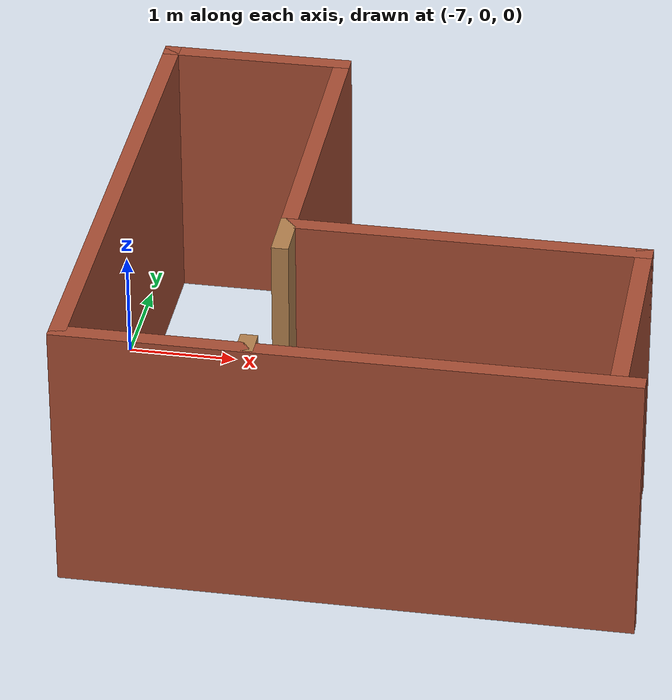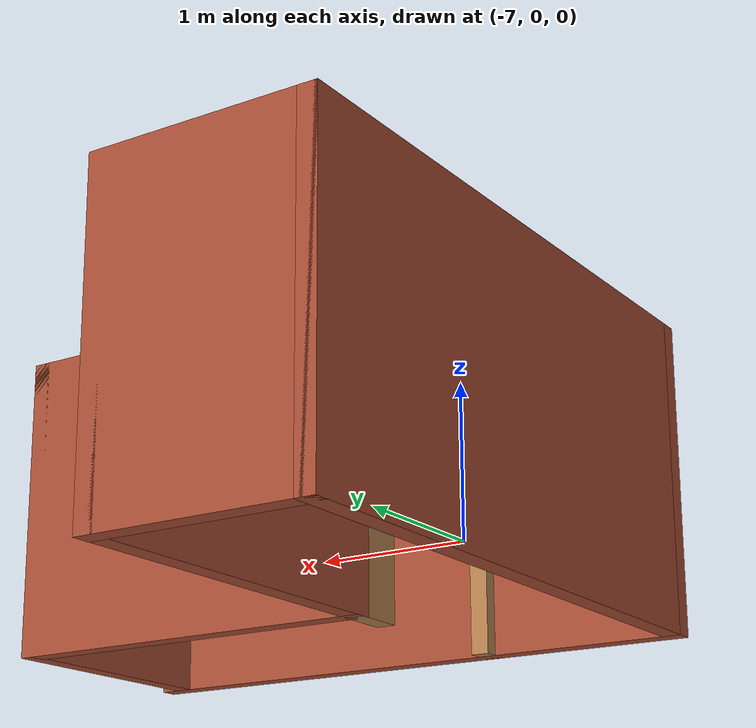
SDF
<?xml version='1.0'?>
<sdf version='1.7'>
  <model name='wall4'>
    <pose>-3.43977 -1.11586 0 0 -0 0</pose>
    <link name='Wall_0'>
      <collision name='Wall_0_Collision'>
        <geometry>
          <box>
            <size>5 0.15 2.5</size>
          </box>
        </geometry>
        <pose>0 0 1.25 0 -0 0</pose>
      </collision>
      <visual name='Wall_0_Visual'>
        <pose>0 0 1.25 0 -0 0</pose>
        <geometry>
          <box>
            <size>5 0.15 2.5</size>
          </box>
        </geometry>
        <material>
          <script>
            <uri>file://media/materials/scripts/gazebo.material</uri>
            <name>Gazebo/Bricks</name>
          </script>
          <ambient>1 1 1 1</ambient>
        </material>
        <meta>
          <layer>0</layer>
        </meta>
      </visual>
      <pose>-0.939767 -2.425 0 0 -0 0</pose>
    </link>
    <link name='Wall_11'>
      <collision name='Wall_11_Collision'>
        <geometry>
          <box>
            <size>0.5 0.15 2.5</size>
          </box>
        </geometry>
        <pose>0 0 1.25 0 -0 0</pose>
      </collision>
      <visual name='Wall_11_Visual'>
        <pose>0 0 1.25 0 -0 0</pose>
        <geometry>
          <box>
            <size>0.5 0.15 2.5</size>
          </box>
        </geometry>
        <material>
          <script>
            <uri>file://media/materials/scripts/gazebo.material</uri>
            <name>Gazebo/Wood</name>
          </script>
          <ambient>1 1 1 1</ambient>
        </material>
        <meta>
          <layer>0</layer>
        </meta>
      </visual>
      <pose>-1.76477 -0.6 0 0 -0 -1.5708</pose>
    </link>
    <link name='Wall_13'>
      <collision name='Wall_13_Collision'>
        <geometry>
          <box>
            <size>0.25 0.15 2.5</size>
          </box>
        </geometry>
        <pose>0 0 1.25 0 -0 0</pose>
      </collision>
      <visual name='Wall_13_Visual'>
        <pose>0 0 1.25 0 -0 0</pose>
        <geometry>
          <box>
            <size>0.25 0.15 2.5</size>
          </box>
        </geometry>
        <material>
          <script>
            <uri>file://media/materials/scripts/gazebo.material</uri>
            <name>Gazebo/Wood</name>
          </script>
          <ambient>1 1 1 1</ambient>
        </material>
        <meta>
          <layer>0</layer>
        </meta>
      </visual>
      <pose>-1.77335 -2.35564 0 0 -0 1.5708</pose>
    </link>
    <link name='Wall_2'>
      <collision name='Wall_2_Collision'>
        <geometry>
          <box>
            <size>5 0.15 2.5</size>
          </box>
        </geometry>
        <pose>0 0 1.25 0 -0 0</pose>
      </collision>
      <visual name='Wall_2_Visual'>
        <pose>0 0 1.25 0 -0 0</pose>
        <geometry>
          <box>
            <size>5 0.15 2.5</size>
          </box>
        </geometry>
        <material>
          <script>
            <uri>file://media/materials/scripts/gazebo.material</uri>
            <name>Gazebo/Bricks</name>
          </script>
          <ambient>1 1 1 1</ambient>
        </material>
        <meta>
          <layer>0</layer>
        </meta>
      </visual>
      <pose>-3.36477 0 0 0 -0 1.5708</pose>
    </link>
    <link name='Wall_3'>
      <collision name='Wall_3_Collision'>
        <geometry>
          <box>
            <size>1.75 0.15 2.5</size>
          </box>
        </geometry>
        <pose>0 0 1.25 0 -0 0</pose>
      </collision>
      <visual name='Wall_3_Visual'>
        <pose>0 0 1.25 0 -0 0</pose>
        <geometry>
          <box>
            <size>1.75 0.15 2.5</size>
          </box>
        </geometry>
        <material>
          <script>
            <uri>file://media/materials/scripts/gazebo.material</uri>
            <name>Gazebo/Bricks</name>
          </script>
          <ambient>1 1 1 1</ambient>
        </material>
        <meta>
          <layer>0</layer>
        </meta>
      </visual>
      <pose>-2.56477 2.425 0 0 -0 0</pose>
    </link>
    <link name='Wall_7'>
      <collision name='Wall_7_Collision'>
        <geometry>
          <box>
            <size>3 0.15 2.5</size>
          </box>
        </geometry>
        <pose>0 0 1.25 0 -0 0</pose>
      </collision>
      <visual name='Wall_7_Visual'>
        <pose>0 0 1.25 0 -0 0</pose>
        <geometry>
          <box>
            <size>3 0.15 2.5</size>
          </box>
        </geometry>
        <material>
          <script>
            <uri>file://media/materials/scripts/gazebo.material</uri>
            <name>Gazebo/Bricks</name>
          </script>
          <ambient>1 1 1 1</ambient>
        </material>
        <meta>
          <layer>0</layer>
        </meta>
      </visual>
      <pose>-1.76477 1 0 0 -0 -1.5708</pose>
    </link>
    <link name='Wall_8'>
      <collision name='Wall_8_Collision'>
        <geometry>
          <box>
            <size>3.25 0.15 2.5</size>
          </box>
        </geometry>
        <pose>0 0 1.25 0 -0 0</pose>
      </collision>
      <visual name='Wall_8_Visual'>
        <pose>0 0 1.25 0 -0 0</pose>
        <geometry>
          <box>
            <size>3.25 0.15 2.5</size>
          </box>
        </geometry>
        <material>
          <script>
            <uri>file://media/materials/scripts/gazebo.material</uri>
            <name>Gazebo/Bricks</name>
          </script>
          <ambient>1 1 1 1</ambient>
        </material>
        <meta>
          <layer>0</layer>
        </meta>
      </visual>
      <pose>-0.214767 -0.425 0 0 -0 0</pose>
    </link>
    <link name='Wall_9'>
      <collision name='Wall_9_Collision'>
        <geometry>
          <box>
            <size>2 0.15 2.5</size>
          </box>
        </geometry>
        <pose>0 0 1.25 0 -0 0</pose>
      </collision>
      <visual name='Wall_9_Visual'>
        <pose>0 0 1.25 0 -0 0</pose>
        <geometry>
          <box>
            <size>2 0.15 2.5</size>
          </box>
        </geometry>
        <material>
          <script>
            <uri>file://media/materials/scripts/gazebo.material</uri>
            <name>Gazebo/Bricks</name>
          </script>
          <ambient>1 1 1 1</ambient>
        </material>
        <meta>
          <layer>0</layer>
        </meta>
      </visual>
      <pose>1.33523 -1.35 0 0 -0 -1.5708</pose>
    </link>
    <static>1</static>
  </model>
</sdf>
